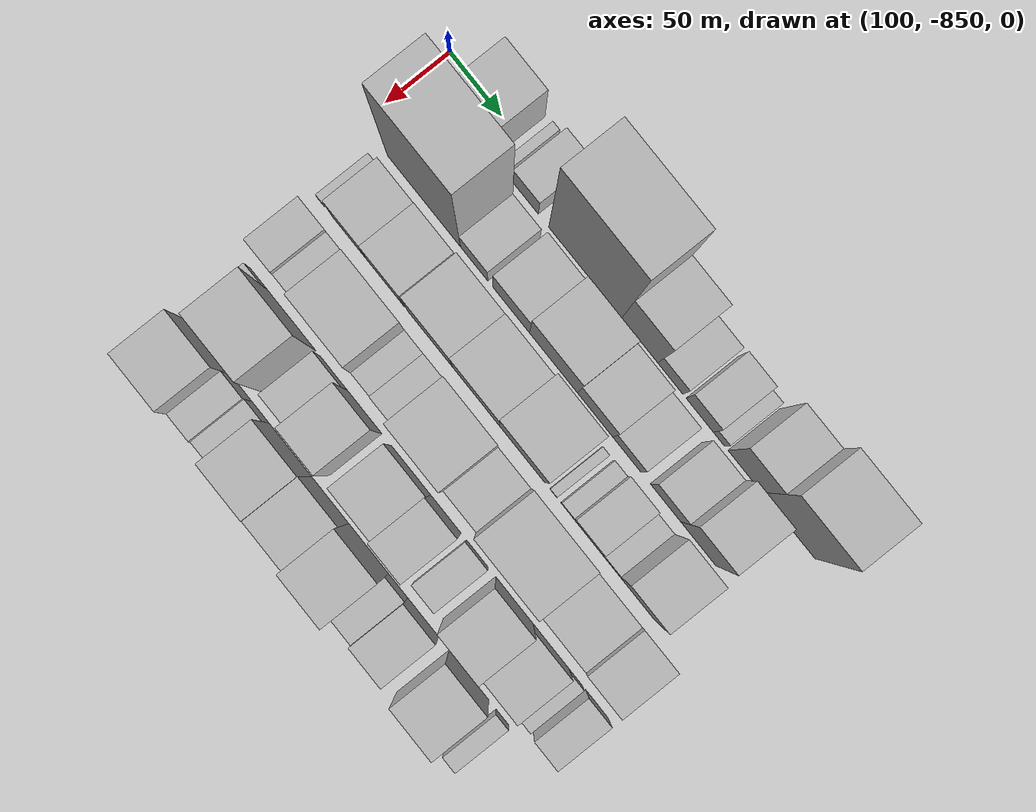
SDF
<sdf version="1.6">
 <world name="default">
  <model name="building_1">
   <static>1</static>
   <pose>100.0000 -802.6062 0 0.000000 0.000000 0.000000</pose>
   <link name="link">
    <pose>0 0 37.50 0 0 0</pose>
    <collision name="collision"><geometry><box><size>40.0000 38.7875 75.0000</size></box></geometry></collision>
    <visual name="visual">
     <cast_shadows>0</cast_shadows>
     <geometry><box><size>40.0000 38.7875 75.0000</size></box></geometry>
     <material>
      <script>
       <uri>model://HANNAS_wall/materials/scripts</uri>
       <uri>model://HANNAS_wall/materials/textures</uri>
       <name>vrc/HANNAS_wall</name>
      </script>
     </material>
    </visual>
   </link>
  </model>
  <model name="building_2">
   <static>1</static>
   <pose>100.0000 -772.8537 0 0.000000 0.000000 0.000000</pose>
   <link name="link">
    <pose>0 0 7.50 0 0 0</pose>
    <collision name="collision"><geometry><box><size>40.0000 6.7176 15.0000</size></box></geometry></collision>
    <visual name="visual">
     <cast_shadows>0</cast_shadows>
     <geometry><box><size>40.0000 6.7176 15.0000</size></box></geometry>
     <material>
      <script>
       <uri>model://HANNAS_wall/materials/scripts</uri>
       <uri>model://HANNAS_wall/materials/textures</uri>
       <name>vrc/HANNAS_wall</name>
      </script>
     </material>
    </visual>
   </link>
  </model>
  <model name="building_3">
   <static>1</static>
   <pose>100.0000 -752.0608 0 0.000000 0.000000 0.000000</pose>
   <link name="link">
    <pose>0 0 21.00 0 0 0</pose>
    <collision name="collision"><geometry><box><size>40.0000 24.8681 42.0000</size></box></geometry></collision>
    <visual name="visual">
     <cast_shadows>0</cast_shadows>
     <geometry><box><size>40.0000 24.8681 42.0000</size></box></geometry>
     <material>
      <script>
       <uri>model://HANNAS_wall/materials/scripts</uri>
       <uri>model://HANNAS_wall/materials/textures</uri>
       <name>vrc/HANNAS_wall</name>
      </script>
     </material>
    </visual>
   </link>
  </model>
  <model name="building_4">
   <static>1</static>
   <pose>100.0000 -694.4256 0 0.000000 0.000000 0.000000</pose>
   <link name="link">
    <pose>0 0 103.50 0 0 0</pose>
    <collision name="collision"><geometry><box><size>40.0000 70.4022 207.0000</size></box></geometry></collision>
    <visual name="visual">
     <cast_shadows>0</cast_shadows>
     <geometry><box><size>40.0000 70.4022 207.0000</size></box></geometry>
     <material>
      <script>
       <uri>model://HANNAS_wall/materials/scripts</uri>
       <uri>model://HANNAS_wall/materials/textures</uri>
       <name>vrc/HANNAS_wall</name>
      </script>
     </material>
    </visual>
   </link>
  </model>
  <model name="building_5">
   <static>1</static>
   <pose>100.0000 -641.9354 0 0.000000 0.000000 0.000000</pose>
   <link name="link">
    <pose>0 0 52.50 0 0 0</pose>
    <collision name="collision"><geometry><box><size>40.0000 34.5782 105.0000</size></box></geometry></collision>
    <visual name="visual">
     <cast_shadows>0</cast_shadows>
     <geometry><box><size>40.0000 34.5782 105.0000</size></box></geometry>
     <material>
      <script>
       <uri>model://HANNAS_wall/materials/scripts</uri>
       <uri>model://HANNAS_wall/materials/textures</uri>
       <name>vrc/HANNAS_wall</name>
      </script>
     </material>
    </visual>
   </link>
  </model>
  <model name="building_6">
   <static>1</static>
   <pose>100.0000 -612.5772 0 0.000000 0.000000 0.000000</pose>
   <link name="link">
    <pose>0 0 21.00 0 0 0</pose>
    <collision name="collision"><geometry><box><size>40.0000 24.1383 42.0000</size></box></geometry></collision>
    <visual name="visual">
     <cast_shadows>0</cast_shadows>
     <geometry><box><size>40.0000 24.1383 42.0000</size></box></geometry>
     <material>
      <script>
       <uri>model://HANNAS_wall/materials/scripts</uri>
       <uri>model://HANNAS_wall/materials/textures</uri>
       <name>vrc/HANNAS_wall</name>
      </script>
     </material>
    </visual>
   </link>
  </model>
  <model name="building_7">
   <static>1</static>
   <pose>100.0000 -584.4796 0 0.000000 0.000000 0.000000</pose>
   <link name="link">
    <pose>0 0 24.00 0 0 0</pose>
    <collision name="collision"><geometry><box><size>40.0000 26.0570 48.0000</size></box></geometry></collision>
    <visual name="visual">
     <cast_shadows>0</cast_shadows>
     <geometry><box><size>40.0000 26.0570 48.0000</size></box></geometry>
     <material>
      <script>
       <uri>model://HANNAS_wall/materials/scripts</uri>
       <uri>model://HANNAS_wall/materials/textures</uri>
       <name>vrc/HANNAS_wall</name>
      </script>
     </material>
    </visual>
   </link>
  </model>
  <model name="building_8">
   <static>1</static>
   <pose>100.0000 -565.9233 0 0.000000 0.000000 0.000000</pose>
   <link name="link">
    <pose>0 0 13.50 0 0 0</pose>
    <collision name="collision"><geometry><box><size>40.0000 11.0555 27.0000</size></box></geometry></collision>
    <visual name="visual">
     <cast_shadows>0</cast_shadows>
     <geometry><box><size>40.0000 11.0555 27.0000</size></box></geometry>
     <material>
      <script>
       <uri>model://HANNAS_wall/materials/scripts</uri>
       <uri>model://HANNAS_wall/materials/textures</uri>
       <name>vrc/HANNAS_wall</name>
      </script>
     </material>
    </visual>
   </link>
  </model>
  <model name="building_9">
   <static>1</static>
   <pose>100.0000 -541.3138 0 0.000000 0.000000 0.000000</pose>
   <link name="link">
    <pose>0 0 46.50 0 0 0</pose>
    <collision name="collision"><geometry><box><size>40.0000 32.1635 93.0000</size></box></geometry></collision>
    <visual name="visual">
     <cast_shadows>0</cast_shadows>
     <geometry><box><size>40.0000 32.1635 93.0000</size></box></geometry>
     <material>
      <script>
       <uri>model://HANNAS_wall/materials/scripts</uri>
       <uri>model://HANNAS_wall/materials/textures</uri>
       <name>vrc/HANNAS_wall</name>
      </script>
     </material>
    </visual>
   </link>
  </model>
  <model name="building_10">
   <static>1</static>
   <pose>100.0000 -499.8838 0 0.000000 0.000000 0.000000</pose>
   <link name="link">
    <pose>0 0 69.00 0 0 0</pose>
    <collision name="collision"><geometry><box><size>40.0000 50.6964 138.0000</size></box></geometry></collision>
    <visual name="visual">
     <cast_shadows>0</cast_shadows>
     <geometry><box><size>40.0000 50.6964 138.0000</size></box></geometry>
     <material>
      <script>
       <uri>model://HANNAS_wall/materials/scripts</uri>
       <uri>model://HANNAS_wall/materials/textures</uri>
       <name>vrc/HANNAS_wall</name>
      </script>
     </material>
    </visual>
   </link>
  </model>
  <model name="building_48">
   <static>1</static>
   <pose>149.0000 -788.7119 0 0.000000 0.000000 0.000000</pose>
   <link name="link">
    <pose>0 0 99.00 0 0 0</pose>
    <collision name="collision"><geometry><box><size>40.0000 70.5762 198.0000</size></box></geometry></collision>
    <visual name="visual">
     <cast_shadows>0</cast_shadows>
     <geometry><box><size>40.0000 70.5762 198.0000</size></box></geometry>
     <material>
      <script>
       <uri>model://HANNAS_wall/materials/scripts</uri>
       <uri>model://HANNAS_wall/materials/textures</uri>
       <name>vrc/HANNAS_wall</name>
      </script>
     </material>
    </visual>
   </link>
  </model>
  <model name="building_49">
   <static>1</static>
   <pose>149.0000 -740.1759 0 0.000000 0.000000 0.000000</pose>
   <link name="link">
    <pose>0 0 22.50 0 0 0</pose>
    <collision name="collision"><geometry><box><size>40.0000 26.4958 45.0000</size></box></geometry></collision>
    <visual name="visual">
     <cast_shadows>0</cast_shadows>
     <geometry><box><size>40.0000 26.4958 45.0000</size></box></geometry>
     <material>
      <script>
       <uri>model://HANNAS_wall/materials/scripts</uri>
       <uri>model://HANNAS_wall/materials/textures</uri>
       <name>vrc/HANNAS_wall</name>
      </script>
     </material>
    </visual>
   </link>
  </model>
  <model name="building_50">
   <static>1</static>
   <pose>149.0000 -704.3912 0 0.000000 0.000000 0.000000</pose>
   <link name="link">
    <pose>0 0 31.50 0 0 0</pose>
    <collision name="collision"><geometry><box><size>40.0000 35.0737 63.0000</size></box></geometry></collision>
    <visual name="visual">
     <cast_shadows>0</cast_shadows>
     <geometry><box><size>40.0000 35.0737 63.0000</size></box></geometry>
     <material>
      <script>
       <uri>model://HANNAS_wall/materials/scripts</uri>
       <uri>model://HANNAS_wall/materials/textures</uri>
       <name>vrc/HANNAS_wall</name>
      </script>
     </material>
    </visual>
   </link>
  </model>
  <model name="building_51">
   <static>1</static>
   <pose>149.0000 -663.7268 0 0.000000 0.000000 0.000000</pose>
   <link name="link">
    <pose>0 0 42.00 0 0 0</pose>
    <collision name="collision"><geometry><box><size>40.0000 46.2550 84.0000</size></box></geometry></collision>
    <visual name="visual">
     <cast_shadows>0</cast_shadows>
     <geometry><box><size>40.0000 46.2550 84.0000</size></box></geometry>
     <material>
      <script>
       <uri>model://HANNAS_wall/materials/scripts</uri>
       <uri>model://HANNAS_wall/materials/textures</uri>
       <name>vrc/HANNAS_wall</name>
      </script>
     </material>
    </visual>
   </link>
  </model>
  <model name="building_52">
   <static>1</static>
   <pose>149.0000 -623.7296 0 0.000000 0.000000 0.000000</pose>
   <link name="link">
    <pose>0 0 33.00 0 0 0</pose>
    <collision name="collision"><geometry><box><size>40.0000 33.7394 66.0000</size></box></geometry></collision>
    <visual name="visual">
     <cast_shadows>0</cast_shadows>
     <geometry><box><size>40.0000 33.7394 66.0000</size></box></geometry>
     <material>
      <script>
       <uri>model://HANNAS_wall/materials/scripts</uri>
       <uri>model://HANNAS_wall/materials/textures</uri>
       <name>vrc/HANNAS_wall</name>
      </script>
     </material>
    </visual>
   </link>
  </model>
  <model name="building_53">
   <static>1</static>
   <pose>149.0000 -593.3624 0 0.000000 0.000000 0.000000</pose>
   <link name="link">
    <pose>0 0 24.00 0 0 0</pose>
    <collision name="collision"><geometry><box><size>40.0000 26.9950 48.0000</size></box></geometry></collision>
    <visual name="visual">
     <cast_shadows>0</cast_shadows>
     <geometry><box><size>40.0000 26.9950 48.0000</size></box></geometry>
     <material>
      <script>
       <uri>model://HANNAS_wall/materials/scripts</uri>
       <uri>model://HANNAS_wall/materials/textures</uri>
       <name>vrc/HANNAS_wall</name>
      </script>
     </material>
    </visual>
   </link>
  </model>
  <model name="building_54">
   <static>1</static>
   <pose>149.0000 -556.3495 0 0.000000 0.000000 0.000000</pose>
   <link name="link">
    <pose>0 0 28.50 0 0 0</pose>
    <collision name="collision"><geometry><box><size>40.0000 29.0308 57.0000</size></box></geometry></collision>
    <visual name="visual">
     <cast_shadows>0</cast_shadows>
     <geometry><box><size>40.0000 29.0308 57.0000</size></box></geometry>
     <material>
      <script>
       <uri>model://HANNAS_wall/materials/scripts</uri>
       <uri>model://HANNAS_wall/materials/textures</uri>
       <name>vrc/HANNAS_wall</name>
      </script>
     </material>
    </visual>
   </link>
  </model>
  <model name="building_55">
   <static>1</static>
   <pose>149.0000 -525.0502 0 0.000000 0.000000 0.000000</pose>
   <link name="link">
    <pose>0 0 51.00 0 0 0</pose>
    <collision name="collision"><geometry><box><size>40.0000 33.5678 102.0000</size></box></geometry></collision>
    <visual name="visual">
     <cast_shadows>0</cast_shadows>
     <geometry><box><size>40.0000 33.5678 102.0000</size></box></geometry>
     <material>
      <script>
       <uri>model://HANNAS_wall/materials/scripts</uri>
       <uri>model://HANNAS_wall/materials/textures</uri>
       <name>vrc/HANNAS_wall</name>
      </script>
     </material>
    </visual>
   </link>
  </model>
  <model name="building_90">
   <static>1</static>
   <pose>198.0000 -826.6689 0 0.000000 0.000000 0.000000</pose>
   <link name="link">
    <pose>0 0 7.50 0 0 0</pose>
    <collision name="collision"><geometry><box><size>40.0000 6.6621 15.0000</size></box></geometry></collision>
    <visual name="visual">
     <cast_shadows>0</cast_shadows>
     <geometry><box><size>40.0000 6.6621 15.0000</size></box></geometry>
     <material>
      <script>
       <uri>model://HANNAS_wall/materials/scripts</uri>
       <uri>model://HANNAS_wall/materials/textures</uri>
       <name>vrc/HANNAS_wall</name>
      </script>
     </material>
    </visual>
   </link>
  </model>
  <model name="building_91">
   <static>1</static>
   <pose>198.0000 -799.4439 0 0.000000 0.000000 0.000000</pose>
   <link name="link">
    <pose>0 0 30.00 0 0 0</pose>
    <collision name="collision"><geometry><box><size>40.0000 33.7880 60.0000</size></box></geometry></collision>
    <visual name="visual">
     <cast_shadows>0</cast_shadows>
     <geometry><box><size>40.0000 33.7880 60.0000</size></box></geometry>
     <material>
      <script>
       <uri>model://HANNAS_wall/materials/scripts</uri>
       <uri>model://HANNAS_wall/materials/textures</uri>
       <name>vrc/HANNAS_wall</name>
      </script>
     </material>
    </visual>
   </link>
  </model>
  <model name="building_92">
   <static>1</static>
   <pose>198.0000 -764.2062 0 0.000000 0.000000 0.000000</pose>
   <link name="link">
    <pose>0 0 31.50 0 0 0</pose>
    <collision name="collision"><geometry><box><size>40.0000 36.6874 63.0000</size></box></geometry></collision>
    <visual name="visual">
     <cast_shadows>0</cast_shadows>
     <geometry><box><size>40.0000 36.6874 63.0000</size></box></geometry>
     <material>
      <script>
       <uri>model://HANNAS_wall/materials/scripts</uri>
       <uri>model://HANNAS_wall/materials/textures</uri>
       <name>vrc/HANNAS_wall</name>
      </script>
     </material>
    </visual>
   </link>
  </model>
  <model name="building_93">
   <static>1</static>
   <pose>198.0000 -720.9710 0 0.000000 0.000000 0.000000</pose>
   <link name="link">
    <pose>0 0 42.00 0 0 0</pose>
    <collision name="collision"><geometry><box><size>40.0000 43.7831 84.0000</size></box></geometry></collision>
    <visual name="visual">
     <cast_shadows>0</cast_shadows>
     <geometry><box><size>40.0000 43.7831 84.0000</size></box></geometry>
     <material>
      <script>
       <uri>model://HANNAS_wall/materials/scripts</uri>
       <uri>model://HANNAS_wall/materials/textures</uri>
       <name>vrc/HANNAS_wall</name>
      </script>
     </material>
    </visual>
   </link>
  </model>
  <model name="building_94">
   <static>1</static>
   <pose>198.0000 -676.7330 0 0.000000 0.000000 0.000000</pose>
   <link name="link">
    <pose>0 0 43.50 0 0 0</pose>
    <collision name="collision"><geometry><box><size>40.0000 44.6927 87.0000</size></box></geometry></collision>
    <visual name="visual">
     <cast_shadows>0</cast_shadows>
     <geometry><box><size>40.0000 44.6927 87.0000</size></box></geometry>
     <material>
      <script>
       <uri>model://HANNAS_wall/materials/scripts</uri>
       <uri>model://HANNAS_wall/materials/textures</uri>
       <name>vrc/HANNAS_wall</name>
      </script>
     </material>
    </visual>
   </link>
  </model>
  <model name="building_95">
   <static>1</static>
   <pose>198.0000 -632.8024 0 0.000000 0.000000 0.000000</pose>
   <link name="link">
    <pose>0 0 60.00 0 0 0</pose>
    <collision name="collision"><geometry><box><size>40.0000 43.1686 120.0000</size></box></geometry></collision>
    <visual name="visual">
     <cast_shadows>0</cast_shadows>
     <geometry><box><size>40.0000 43.1686 120.0000</size></box></geometry>
     <material>
      <script>
       <uri>model://HANNAS_wall/materials/scripts</uri>
       <uri>model://HANNAS_wall/materials/textures</uri>
       <name>vrc/HANNAS_wall</name>
      </script>
     </material>
    </visual>
   </link>
  </model>
  <model name="building_96">
   <static>1</static>
   <pose>198.0000 -602.9322 0 0.000000 0.000000 0.000000</pose>
   <link name="link">
    <pose>0 0 7.50 0 0 0</pose>
    <collision name="collision"><geometry><box><size>40.0000 6.5718 15.0000</size></box></geometry></collision>
    <visual name="visual">
     <cast_shadows>0</cast_shadows>
     <geometry><box><size>40.0000 6.5718 15.0000</size></box></geometry>
     <material>
      <script>
       <uri>model://HANNAS_wall/materials/scripts</uri>
       <uri>model://HANNAS_wall/materials/textures</uri>
       <name>vrc/HANNAS_wall</name>
      </script>
     </material>
    </visual>
   </link>
  </model>
  <model name="building_97">
   <static>1</static>
   <pose>198.0000 -589.6942 0 0.000000 0.000000 0.000000</pose>
   <link name="link">
    <pose>0 0 12.00 0 0 0</pose>
    <collision name="collision"><geometry><box><size>40.0000 11.9041 24.0000</size></box></geometry></collision>
    <visual name="visual">
     <cast_shadows>0</cast_shadows>
     <geometry><box><size>40.0000 11.9041 24.0000</size></box></geometry>
     <material>
      <script>
       <uri>model://HANNAS_wall/materials/scripts</uri>
       <uri>model://HANNAS_wall/materials/textures</uri>
       <name>vrc/HANNAS_wall</name>
      </script>
     </material>
    </visual>
   </link>
  </model>
  <model name="building_98">
   <static>1</static>
   <pose>198.0000 -570.3587 0 0.000000 0.000000 0.000000</pose>
   <link name="link">
    <pose>0 0 24.00 0 0 0</pose>
    <collision name="collision"><geometry><box><size>40.0000 26.7670 48.0000</size></box></geometry></collision>
    <visual name="visual">
     <cast_shadows>0</cast_shadows>
     <geometry><box><size>40.0000 26.7670 48.0000</size></box></geometry>
     <material>
      <script>
       <uri>model://HANNAS_wall/materials/scripts</uri>
       <uri>model://HANNAS_wall/materials/textures</uri>
       <name>vrc/HANNAS_wall</name>
      </script>
     </material>
    </visual>
   </link>
  </model>
  <model name="building_99">
   <static>1</static>
   <pose>198.0000 -548.9127 0 0.000000 0.000000 0.000000</pose>
   <link name="link">
    <pose>0 0 15.00 0 0 0</pose>
    <collision name="collision"><geometry><box><size>40.0000 16.1250 30.0000</size></box></geometry></collision>
    <visual name="visual">
     <cast_shadows>0</cast_shadows>
     <geometry><box><size>40.0000 16.1250 30.0000</size></box></geometry>
     <material>
      <script>
       <uri>model://HANNAS_wall/materials/scripts</uri>
       <uri>model://HANNAS_wall/materials/textures</uri>
       <name>vrc/HANNAS_wall</name>
      </script>
     </material>
    </visual>
   </link>
  </model>
  <model name="building_100">
   <static>1</static>
   <pose>198.0000 -524.1247 0 0.000000 0.000000 0.000000</pose>
   <link name="link">
    <pose>0 0 54.00 0 0 0</pose>
    <collision name="collision"><geometry><box><size>40.0000 33.4510 108.0000</size></box></geometry></collision>
    <visual name="visual">
     <cast_shadows>0</cast_shadows>
     <geometry><box><size>40.0000 33.4510 108.0000</size></box></geometry>
     <material>
      <script>
       <uri>model://HANNAS_wall/materials/scripts</uri>
       <uri>model://HANNAS_wall/materials/textures</uri>
       <name>vrc/HANNAS_wall</name>
      </script>
     </material>
    </visual>
   </link>
  </model>
  <model name="building_145">
   <static>1</static>
   <pose>247.0000 -817.5928 0 0.000000 0.000000 0.000000</pose>
   <link name="link">
    <pose>0 0 22.50 0 0 0</pose>
    <collision name="collision"><geometry><box><size>40.0000 24.8143 45.0000</size></box></geometry></collision>
    <visual name="visual">
     <cast_shadows>0</cast_shadows>
     <geometry><box><size>40.0000 24.8143 45.0000</size></box></geometry>
     <material>
      <script>
       <uri>model://HANNAS_wall/materials/scripts</uri>
       <uri>model://HANNAS_wall/materials/textures</uri>
       <name>vrc/HANNAS_wall</name>
      </script>
     </material>
    </visual>
   </link>
  </model>
  <model name="building_146">
   <static>1</static>
   <pose>247.0000 -794.5475 0 0.000000 0.000000 0.000000</pose>
   <link name="link">
    <pose>0 0 18.00 0 0 0</pose>
    <collision name="collision"><geometry><box><size>40.0000 21.2764 36.0000</size></box></geometry></collision>
    <visual name="visual">
     <cast_shadows>0</cast_shadows>
     <geometry><box><size>40.0000 21.2764 36.0000</size></box></geometry>
     <material>
      <script>
       <uri>model://HANNAS_wall/materials/scripts</uri>
       <uri>model://HANNAS_wall/materials/textures</uri>
       <name>vrc/HANNAS_wall</name>
      </script>
     </material>
    </visual>
   </link>
  </model>
  <model name="building_147">
   <static>1</static>
   <pose>247.0000 -757.8164 0 0.000000 0.000000 0.000000</pose>
   <link name="link">
    <pose>0 0 43.50 0 0 0</pose>
    <collision name="collision"><geometry><box><size>40.0000 52.1859 87.0000</size></box></geometry></collision>
    <visual name="visual">
     <cast_shadows>0</cast_shadows>
     <geometry><box><size>40.0000 52.1859 87.0000</size></box></geometry>
     <material>
      <script>
       <uri>model://HANNAS_wall/materials/scripts</uri>
       <uri>model://HANNAS_wall/materials/textures</uri>
       <name>vrc/HANNAS_wall</name>
      </script>
     </material>
    </visual>
   </link>
  </model>
  <model name="building_148">
   <static>1</static>
   <pose>247.0000 -722.6174 0 0.000000 0.000000 0.000000</pose>
   <link name="link">
    <pose>0 0 18.00 0 0 0</pose>
    <collision name="collision"><geometry><box><size>40.0000 18.2121 36.0000</size></box></geometry></collision>
    <visual name="visual">
     <cast_shadows>0</cast_shadows>
     <geometry><box><size>40.0000 18.2121 36.0000</size></box></geometry>
     <material>
      <script>
       <uri>model://HANNAS_wall/materials/scripts</uri>
       <uri>model://HANNAS_wall/materials/textures</uri>
       <name>vrc/HANNAS_wall</name>
      </script>
     </material>
    </visual>
   </link>
  </model>
  <model name="building_149">
   <static>1</static>
   <pose>247.0000 -702.0148 0 0.000000 0.000000 0.000000</pose>
   <link name="link">
    <pose>0 0 22.50 0 0 0</pose>
    <collision name="collision"><geometry><box><size>40.0000 22.9932 45.0000</size></box></geometry></collision>
    <visual name="visual">
     <cast_shadows>0</cast_shadows>
     <geometry><box><size>40.0000 22.9932 45.0000</size></box></geometry>
     <material>
      <script>
       <uri>model://HANNAS_wall/materials/scripts</uri>
       <uri>model://HANNAS_wall/materials/textures</uri>
       <name>vrc/HANNAS_wall</name>
      </script>
     </material>
    </visual>
   </link>
  </model>
  <model name="building_150">
   <static>1</static>
   <pose>247.0000 -667.3813 0 0.000000 0.000000 0.000000</pose>
   <link name="link">
    <pose>0 0 67.50 0 0 0</pose>
    <collision name="collision"><geometry><box><size>40.0000 46.2737 135.0000</size></box></geometry></collision>
    <visual name="visual">
     <cast_shadows>0</cast_shadows>
     <geometry><box><size>40.0000 46.2737 135.0000</size></box></geometry>
     <material>
      <script>
       <uri>model://HANNAS_wall/materials/scripts</uri>
       <uri>model://HANNAS_wall/materials/textures</uri>
       <name>vrc/HANNAS_wall</name>
      </script>
     </material>
    </visual>
   </link>
  </model>
  <model name="building_151">
   <static>1</static>
   <pose>247.0000 -629.2306 0 0.000000 0.000000 0.000000</pose>
   <link name="link">
    <pose>0 0 28.50 0 0 0</pose>
    <collision name="collision"><geometry><box><size>40.0000 30.0276 57.0000</size></box></geometry></collision>
    <visual name="visual">
     <cast_shadows>0</cast_shadows>
     <geometry><box><size>40.0000 30.0276 57.0000</size></box></geometry>
     <material>
      <script>
       <uri>model://HANNAS_wall/materials/scripts</uri>
       <uri>model://HANNAS_wall/materials/textures</uri>
       <name>vrc/HANNAS_wall</name>
      </script>
     </material>
    </visual>
   </link>
  </model>
  <model name="building_152">
   <static>1</static>
   <pose>247.0000 -587.1037 0 0.000000 0.000000 0.000000</pose>
   <link name="link">
    <pose>0 0 75.00 0 0 0</pose>
    <collision name="collision"><geometry><box><size>40.0000 54.2261 150.0000</size></box></geometry></collision>
    <visual name="visual">
     <cast_shadows>0</cast_shadows>
     <geometry><box><size>40.0000 54.2261 150.0000</size></box></geometry>
     <material>
      <script>
       <uri>model://HANNAS_wall/materials/scripts</uri>
       <uri>model://HANNAS_wall/materials/textures</uri>
       <name>vrc/HANNAS_wall</name>
      </script>
     </material>
    </visual>
   </link>
  </model>
  <model name="building_153">
   <static>1</static>
   <pose>247.0000 -538.1835 0 0.000000 0.000000 0.000000</pose>
   <link name="link">
    <pose>0 0 40.50 0 0 0</pose>
    <collision name="collision"><geometry><box><size>40.0000 43.6144 81.0000</size></box></geometry></collision>
    <visual name="visual">
     <cast_shadows>0</cast_shadows>
     <geometry><box><size>40.0000 43.6144 81.0000</size></box></geometry>
     <material>
      <script>
       <uri>model://HANNAS_wall/materials/scripts</uri>
       <uri>model://HANNAS_wall/materials/textures</uri>
       <name>vrc/HANNAS_wall</name>
      </script>
     </material>
    </visual>
   </link>
  </model>
  <model name="building_154">
   <static>1</static>
   <pose>247.0000 -501.2297 0 0.000000 0.000000 0.000000</pose>
   <link name="link">
    <pose>0 0 48.00 0 0 0</pose>
    <collision name="collision"><geometry><box><size>40.0000 30.2931 96.0000</size></box></geometry></collision>
    <visual name="visual">
     <cast_shadows>0</cast_shadows>
     <geometry><box><size>40.0000 30.2931 96.0000</size></box></geometry>
     <material>
      <script>
       <uri>model://HANNAS_wall/materials/scripts</uri>
       <uri>model://HANNAS_wall/materials/textures</uri>
       <name>vrc/HANNAS_wall</name>
      </script>
     </material>
    </visual>
   </link>
  </model>
  <model name="building_200">
   <static>1</static>
   <pose>296.0000 -813.7950 0 0.000000 0.000000 0.000000</pose>
   <link name="link">
    <pose>0 0 15.00 0 0 0</pose>
    <collision name="collision"><geometry><box><size>40.0000 16.4100 30.0000</size></box></geometry></collision>
    <visual name="visual">
     <cast_shadows>0</cast_shadows>
     <geometry><box><size>40.0000 16.4100 30.0000</size></box></geometry>
     <material>
      <script>
       <uri>model://HANNAS_wall/materials/scripts</uri>
       <uri>model://HANNAS_wall/materials/textures</uri>
       <name>vrc/HANNAS_wall</name>
      </script>
     </material>
    </visual>
   </link>
  </model>
  <model name="building_201">
   <static>1</static>
   <pose>296.0000 -781.9961 0 0.000000 0.000000 0.000000</pose>
   <link name="link">
    <pose>0 0 60.00 0 0 0</pose>
    <collision name="collision"><geometry><box><size>40.0000 47.1879 120.0000</size></box></geometry></collision>
    <visual name="visual">
     <cast_shadows>0</cast_shadows>
     <geometry><box><size>40.0000 47.1879 120.0000</size></box></geometry>
     <material>
      <script>
       <uri>model://HANNAS_wall/materials/scripts</uri>
       <uri>model://HANNAS_wall/materials/textures</uri>
       <name>vrc/HANNAS_wall</name>
      </script>
     </material>
    </visual>
   </link>
  </model>
  <model name="building_202">
   <static>1</static>
   <pose>296.0000 -741.2589 0 0.000000 0.000000 0.000000</pose>
   <link name="link">
    <pose>0 0 22.50 0 0 0</pose>
    <collision name="collision"><geometry><box><size>40.0000 26.2865 45.0000</size></box></geometry></collision>
    <visual name="visual">
     <cast_shadows>0</cast_shadows>
     <geometry><box><size>40.0000 26.2865 45.0000</size></box></geometry>
     <material>
      <script>
       <uri>model://HANNAS_wall/materials/scripts</uri>
       <uri>model://HANNAS_wall/materials/textures</uri>
       <name>vrc/HANNAS_wall</name>
      </script>
     </material>
    </visual>
   </link>
  </model>
  <model name="building_203">
   <static>1</static>
   <pose>296.0000 -711.3926 0 0.000000 0.000000 0.000000</pose>
   <link name="link">
    <pose>0 0 48.00 0 0 0</pose>
    <collision name="collision"><geometry><box><size>40.0000 33.4462 96.0000</size></box></geometry></collision>
    <visual name="visual">
     <cast_shadows>0</cast_shadows>
     <geometry><box><size>40.0000 33.4462 96.0000</size></box></geometry>
     <material>
      <script>
       <uri>model://HANNAS_wall/materials/scripts</uri>
       <uri>model://HANNAS_wall/materials/textures</uri>
       <name>vrc/HANNAS_wall</name>
      </script>
     </material>
    </visual>
   </link>
  </model>
  <model name="building_204">
   <static>1</static>
   <pose>296.0000 -666.5864 0 0.000000 0.000000 0.000000</pose>
   <link name="link">
    <pose>0 0 37.50 0 0 0</pose>
    <collision name="collision"><geometry><box><size>40.0000 38.1661 75.0000</size></box></geometry></collision>
    <visual name="visual">
     <cast_shadows>0</cast_shadows>
     <geometry><box><size>40.0000 38.1661 75.0000</size></box></geometry>
     <material>
      <script>
       <uri>model://HANNAS_wall/materials/scripts</uri>
       <uri>model://HANNAS_wall/materials/textures</uri>
       <name>vrc/HANNAS_wall</name>
      </script>
     </material>
    </visual>
   </link>
  </model>
  <model name="building_205">
   <static>1</static>
   <pose>296.0000 -632.9798 0 0.000000 0.000000 0.000000</pose>
   <link name="link">
    <pose>0 0 46.50 0 0 0</pose>
    <collision name="collision"><geometry><box><size>40.0000 29.0471 93.0000</size></box></geometry></collision>
    <visual name="visual">
     <cast_shadows>0</cast_shadows>
     <geometry><box><size>40.0000 29.0471 93.0000</size></box></geometry>
     <material>
      <script>
       <uri>model://HANNAS_wall/materials/scripts</uri>
       <uri>model://HANNAS_wall/materials/textures</uri>
       <name>vrc/HANNAS_wall</name>
      </script>
     </material>
    </visual>
   </link>
  </model>
  <model name="building_206">
   <static>1</static>
   <pose>296.0000 -602.9219 0 0.000000 0.000000 0.000000</pose>
   <link name="link">
    <pose>0 0 18.00 0 0 0</pose>
    <collision name="collision"><geometry><box><size>40.0000 21.0688 36.0000</size></box></geometry></collision>
    <visual name="visual">
     <cast_shadows>0</cast_shadows>
     <geometry><box><size>40.0000 21.0688 36.0000</size></box></geometry>
     <material>
      <script>
       <uri>model://HANNAS_wall/materials/scripts</uri>
       <uri>model://HANNAS_wall/materials/textures</uri>
       <name>vrc/HANNAS_wall</name>
      </script>
     </material>
    </visual>
   </link>
  </model>
  <model name="building_207">
   <static>1</static>
   <pose>296.0000 -567.5043 0 0.000000 0.000000 0.000000</pose>
   <link name="link">
    <pose>0 0 52.50 0 0 0</pose>
    <collision name="collision"><geometry><box><size>40.0000 35.7663 105.0000</size></box></geometry></collision>
    <visual name="visual">
     <cast_shadows>0</cast_shadows>
     <geometry><box><size>40.0000 35.7663 105.0000</size></box></geometry>
     <material>
      <script>
       <uri>model://HANNAS_wall/materials/scripts</uri>
       <uri>model://HANNAS_wall/materials/textures</uri>
       <name>vrc/HANNAS_wall</name>
      </script>
     </material>
    </visual>
   </link>
  </model>
  <model name="building_208">
   <static>1</static>
   <pose>296.0000 -532.3580 0 0.000000 0.000000 0.000000</pose>
   <link name="link">
    <pose>0 0 31.50 0 0 0</pose>
    <collision name="collision"><geometry><box><size>40.0000 34.5263 63.0000</size></box></geometry></collision>
    <visual name="visual">
     <cast_shadows>0</cast_shadows>
     <geometry><box><size>40.0000 34.5263 63.0000</size></box></geometry>
     <material>
      <script>
       <uri>model://HANNAS_wall/materials/scripts</uri>
       <uri>model://HANNAS_wall/materials/textures</uri>
       <name>vrc/HANNAS_wall</name>
      </script>
     </material>
    </visual>
   </link>
  </model>
  <model name="building_209">
   <static>1</static>
   <pose>296.0000 -508.7906 0 0.000000 0.000000 0.000000</pose>
   <link name="link">
    <pose>0 0 13.50 0 0 0</pose>
    <collision name="collision"><geometry><box><size>40.0000 12.6086 27.0000</size></box></geometry></collision>
    <visual name="visual">
     <cast_shadows>0</cast_shadows>
     <geometry><box><size>40.0000 12.6086 27.0000</size></box></geometry>
     <material>
      <script>
       <uri>model://HANNAS_wall/materials/scripts</uri>
       <uri>model://HANNAS_wall/materials/textures</uri>
       <name>vrc/HANNAS_wall</name>
      </script>
     </material>
    </visual>
   </link>
  </model>
  <model name="building_210">
   <static>1</static>
   <pose>296.0000 -488.6660 0 0.000000 0.000000 0.000000</pose>
   <link name="link">
    <pose>0 0 21.00 0 0 0</pose>
    <collision name="collision"><geometry><box><size>40.0000 21.6404 42.0000</size></box></geometry></collision>
    <visual name="visual">
     <cast_shadows>0</cast_shadows>
     <geometry><box><size>40.0000 21.6404 42.0000</size></box></geometry>
     <material>
      <script>
       <uri>model://HANNAS_wall/materials/scripts</uri>
       <uri>model://HANNAS_wall/materials/textures</uri>
       <name>vrc/HANNAS_wall</name>
      </script>
     </material>
    </visual>
   </link>
  </model>
  <model name="building_249">
   <static>1</static>
   <pose>345.0000 -800.1286 0 0.000000 0.000000 0.000000</pose>
   <link name="link">
    <pose>0 0 37.50 0 0 0</pose>
    <collision name="collision"><geometry><box><size>40.0000 41.7427 75.0000</size></box></geometry></collision>
    <visual name="visual">
     <cast_shadows>0</cast_shadows>
     <geometry><box><size>40.0000 41.7427 75.0000</size></box></geometry>
     <material>
      <script>
       <uri>model://HANNAS_wall/materials/scripts</uri>
       <uri>model://HANNAS_wall/materials/textures</uri>
       <name>vrc/HANNAS_wall</name>
      </script>
     </material>
    </visual>
   </link>
  </model>
  <model name="building_250">
   <static>1</static>
   <pose>345.0000 -768.9916 0 0.000000 0.000000 0.000000</pose>
   <link name="link">
    <pose>0 0 19.50 0 0 0</pose>
    <collision name="collision"><geometry><box><size>40.0000 20.5313 39.0000</size></box></geometry></collision>
    <visual name="visual">
     <cast_shadows>0</cast_shadows>
     <geometry><box><size>40.0000 20.5313 39.0000</size></box></geometry>
     <material>
      <script>
       <uri>model://HANNAS_wall/materials/scripts</uri>
       <uri>model://HANNAS_wall/materials/textures</uri>
       <name>vrc/HANNAS_wall</name>
      </script>
     </material>
    </visual>
   </link>
  </model>
  <model name="building_251">
   <static>1</static>
   <pose>345.0000 -750.4324 0 0.000000 0.000000 0.000000</pose>
   <link name="link">
    <pose>0 0 16.50 0 0 0</pose>
    <collision name="collision"><geometry><box><size>40.0000 16.5873 33.0000</size></box></geometry></collision>
    <visual name="visual">
     <cast_shadows>0</cast_shadows>
     <geometry><box><size>40.0000 16.5873 33.0000</size></box></geometry>
     <material>
      <script>
       <uri>model://HANNAS_wall/materials/scripts</uri>
       <uri>model://HANNAS_wall/materials/textures</uri>
       <name>vrc/HANNAS_wall</name>
      </script>
     </material>
    </visual>
   </link>
  </model>
  <model name="building_252">
   <static>1</static>
   <pose>345.0000 -721.6421 0 0.000000 0.000000 0.000000</pose>
   <link name="link">
    <pose>0 0 37.50 0 0 0</pose>
    <collision name="collision"><geometry><box><size>40.0000 40.9932 75.0000</size></box></geometry></collision>
    <visual name="visual">
     <cast_shadows>0</cast_shadows>
     <geometry><box><size>40.0000 40.9932 75.0000</size></box></geometry>
     <material>
      <script>
       <uri>model://HANNAS_wall/materials/scripts</uri>
       <uri>model://HANNAS_wall/materials/textures</uri>
       <name>vrc/HANNAS_wall</name>
      </script>
     </material>
    </visual>
   </link>
  </model>
  <model name="building_253">
   <static>1</static>
   <pose>345.0000 -683.0752 0 0.000000 0.000000 0.000000</pose>
   <link name="link">
    <pose>0 0 36.00 0 0 0</pose>
    <collision name="collision"><geometry><box><size>40.0000 36.1406 72.0000</size></box></geometry></collision>
    <visual name="visual">
     <cast_shadows>0</cast_shadows>
     <geometry><box><size>40.0000 36.1406 72.0000</size></box></geometry>
     <material>
      <script>
       <uri>model://HANNAS_wall/materials/scripts</uri>
       <uri>model://HANNAS_wall/materials/textures</uri>
       <name>vrc/HANNAS_wall</name>
      </script>
     </material>
    </visual>
   </link>
  </model>
  <model name="building_254">
   <static>1</static>
   <pose>345.0000 -645.8482 0 0.000000 0.000000 0.000000</pose>
   <link name="link">
    <pose>0 0 48.00 0 0 0</pose>
    <collision name="collision"><geometry><box><size>40.0000 38.3134 96.0000</size></box></geometry></collision>
    <visual name="visual">
     <cast_shadows>0</cast_shadows>
     <geometry><box><size>40.0000 38.3134 96.0000</size></box></geometry>
     <material>
      <script>
       <uri>model://HANNAS_wall/materials/scripts</uri>
       <uri>model://HANNAS_wall/materials/textures</uri>
       <name>vrc/HANNAS_wall</name>
      </script>
     </material>
    </visual>
   </link>
  </model>
  <model name="building_255">
   <static>1</static>
   <pose>345.0000 -617.4720 0 0.000000 0.000000 0.000000</pose>
   <link name="link">
    <pose>0 0 18.00 0 0 0</pose>
    <collision name="collision"><geometry><box><size>40.0000 18.4391 36.0000</size></box></geometry></collision>
    <visual name="visual">
     <cast_shadows>0</cast_shadows>
     <geometry><box><size>40.0000 18.4391 36.0000</size></box></geometry>
     <material>
      <script>
       <uri>model://HANNAS_wall/materials/scripts</uri>
       <uri>model://HANNAS_wall/materials/textures</uri>
       <name>vrc/HANNAS_wall</name>
      </script>
     </material>
    </visual>
   </link>
  </model>
  <model name="building_256">
   <static>1</static>
   <pose>345.0000 -593.3759 0 0.000000 0.000000 0.000000</pose>
   <link name="link">
    <pose>0 0 25.50 0 0 0</pose>
    <collision name="collision"><geometry><box><size>40.0000 29.7531 51.0000</size></box></geometry></collision>
    <visual name="visual">
     <cast_shadows>0</cast_shadows>
     <geometry><box><size>40.0000 29.7531 51.0000</size></box></geometry>
     <material>
      <script>
       <uri>model://HANNAS_wall/materials/scripts</uri>
       <uri>model://HANNAS_wall/materials/textures</uri>
       <name>vrc/HANNAS_wall</name>
      </script>
     </material>
    </visual>
   </link>
  </model>
  <model name="building_257">
   <static>1</static>
   <pose>345.0000 -549.5525 0 0.000000 0.000000 0.000000</pose>
   <link name="link">
    <pose>0 0 37.50 0 0 0</pose>
    <collision name="collision"><geometry><box><size>40.0000 37.8935 75.0000</size></box></geometry></collision>
    <visual name="visual">
     <cast_shadows>0</cast_shadows>
     <geometry><box><size>40.0000 37.8935 75.0000</size></box></geometry>
     <material>
      <script>
       <uri>model://HANNAS_wall/materials/scripts</uri>
       <uri>model://HANNAS_wall/materials/textures</uri>
       <name>vrc/HANNAS_wall</name>
      </script>
     </material>
    </visual>
   </link>
  </model>
  <model name="building_258">
   <static>1</static>
   <pose>345.0000 -517.6291 0 0.000000 0.000000 0.000000</pose>
   <link name="link">
    <pose>0 0 12.00 0 0 0</pose>
    <collision name="collision"><geometry><box><size>40.0000 11.9534 24.0000</size></box></geometry></collision>
    <visual name="visual">
     <cast_shadows>0</cast_shadows>
     <geometry><box><size>40.0000 11.9534 24.0000</size></box></geometry>
     <material>
      <script>
       <uri>model://HANNAS_wall/materials/scripts</uri>
       <uri>model://HANNAS_wall/materials/textures</uri>
       <name>vrc/HANNAS_wall</name>
      </script>
     </material>
    </visual>
   </link>
  </model>
 </world>
</sdf>
